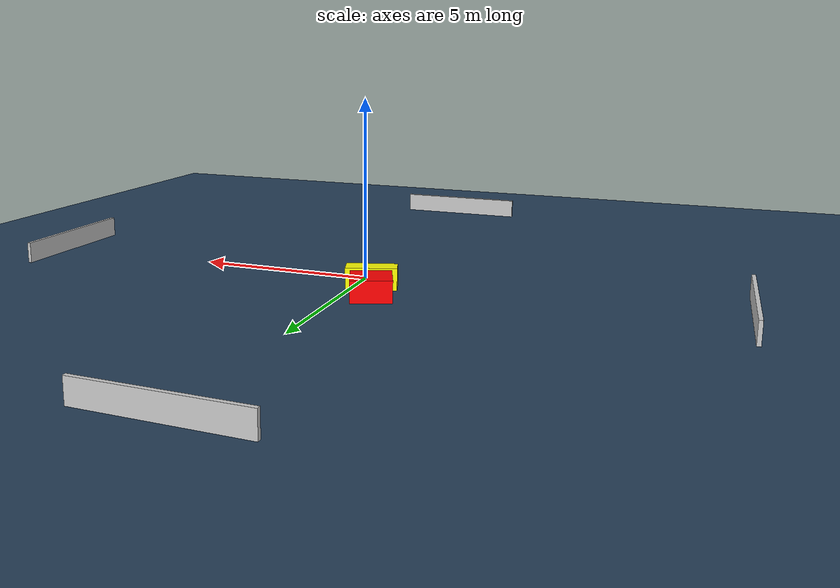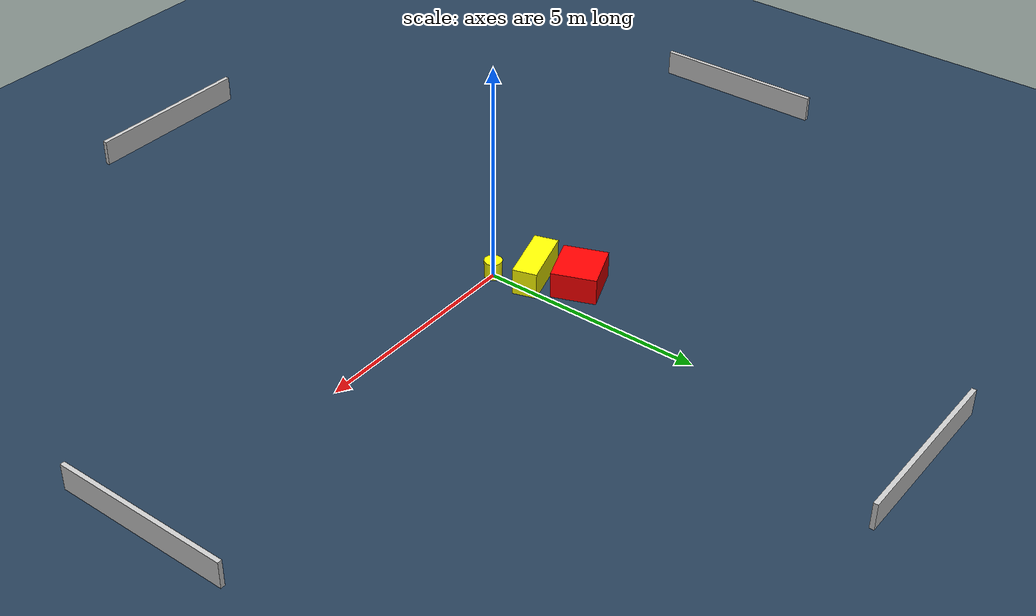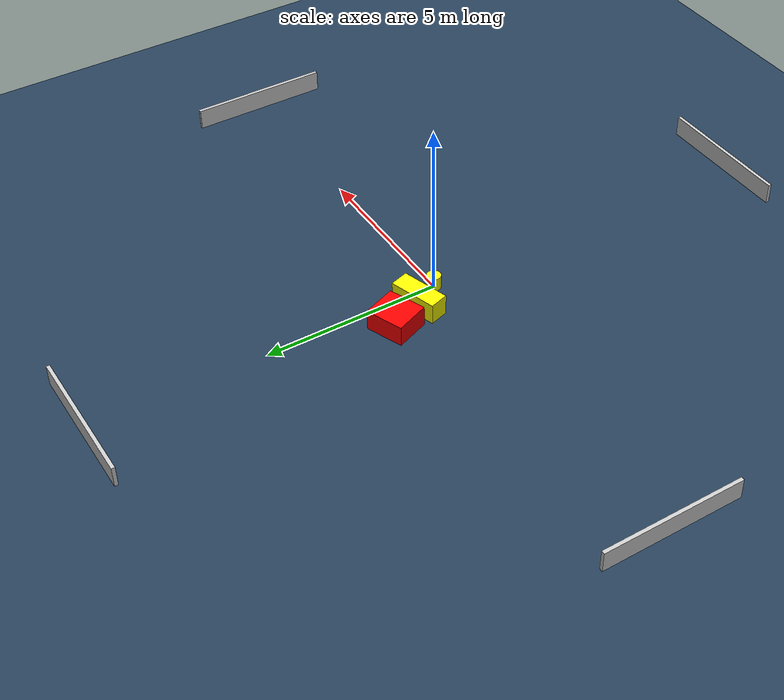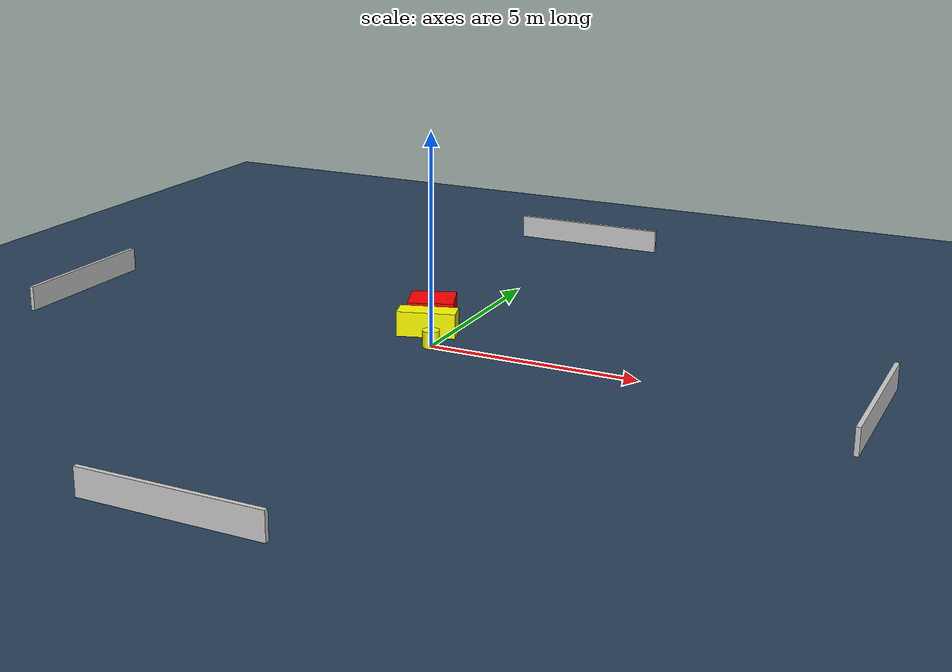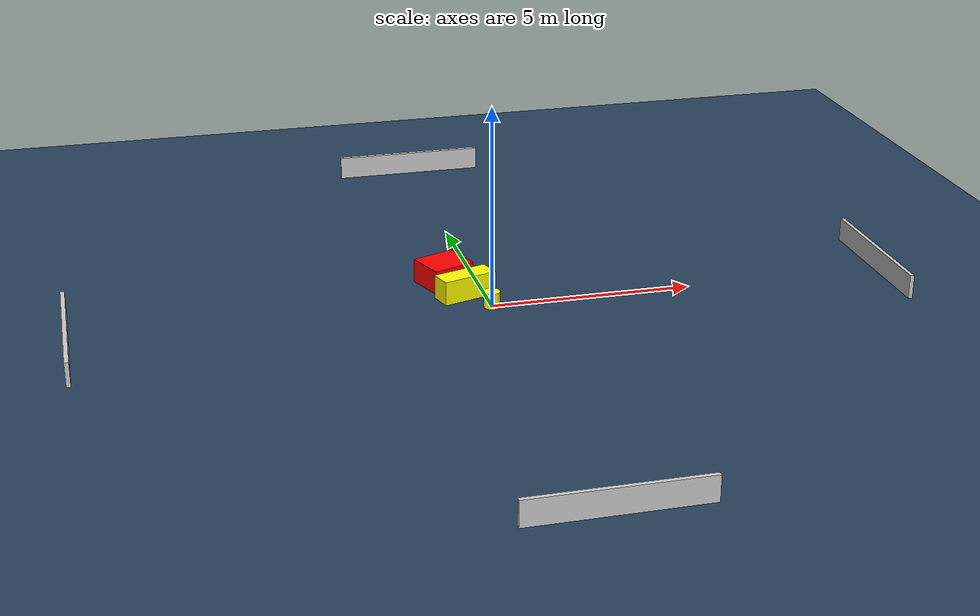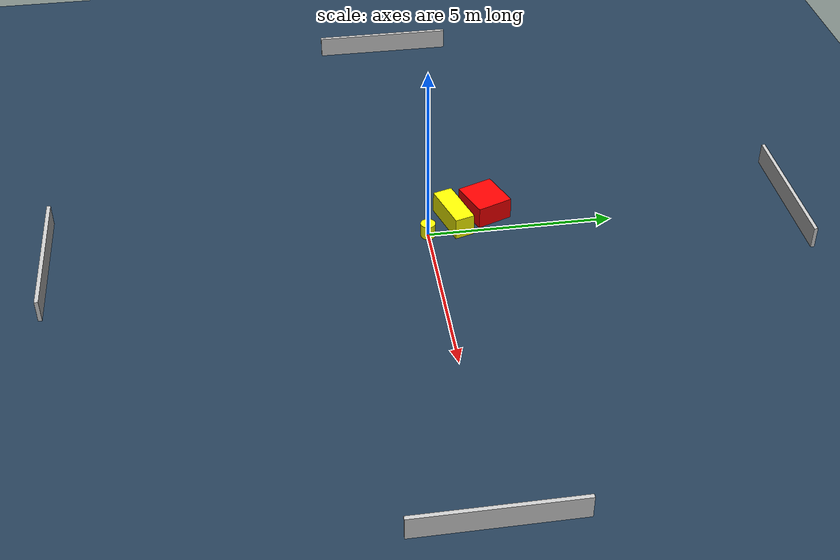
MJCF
<?xml version="1.0" ?>
<mujoco model="generated_environment">
  <option timestep="0.01" integrator="RK4" cone="elliptic"/>
  <default>
    <geom density="1"/>
  </default>
  <asset>
    <texture builtin="gradient" height="3072" name="skybox" rgb1="0.3 0.5 0.7" rgb2="0 0 0" type="skybox" width="512"/>
    <texture builtin="checker" height="300" name="groundplane" rgb1="0.2 0.3 0.4" rgb2="0.1 0.2 0.3" type="2d" width="300"/>
    <material name="groundplane" reflectance="0.2" texrepeat="5 5" texture="groundplane"/>
  </asset>
  <worldbody>
    <light dir="0 0 -1" directional="true" pos="0 0 1.5"/>
    <geom condim="3" friction="0.5 0.005 0.001" material="groundplane" name="floor" pos="0 0 0" size="0 0 0.05" type="plane"/>
    <body name="walls">
      <geom name="wall_1" condim="4" pos="-10.0 0.0 0.3" rgba="0.800000011920929 0.800000011920929 0.800000011920929 1.0" size="0.05 2.0 0.3" type="box"/>
      <geom name="wall_2" condim="4" pos="10.0 0.0 0.3" rgba="0.800000011920929 0.800000011920929 0.800000011920929 1.0" size="0.05 2.0 0.3" type="box"/>
      <geom name="wall_3" condim="4" pos="0.0 -10.0 0.3" rgba="0.800000011920929 0.800000011920929 0.800000011920929 1.0" size="2.0 0.05 0.3" type="box"/>
      <geom name="wall_4" condim="4" pos="0.0 10.0 0.3" rgba="0.800000011920929 0.800000011920929 0.800000011920929 1.0" size="2.0 0.05 0.3" type="box"/>
    </body>
    <body name="robot">
      <joint name="joint_x" type="slide" pos="0 0 0" axis="1 0 0"/>
      <joint name="joint_y" type="slide" pos="0 0 0" axis="0 1 0"/>
      <geom name="robot" type="cylinder" pos="0.0 0.0 0.2" size="0.2 0.2 0.0" mass="5.0" friction="1.0 0.005 0.0001" condim="4" rgba="1.0 1.0 0.0 1.0"/>
    </body>
    <body name="obstacle_1_movable">
      <geom name="obstacle_1_movable" condim="4" pos="-0.478451351256288 0.7646093971399708 0.3" euler="0 0 286.9079078595485" friction="0.0 0.005 0.001" rgba="1.0 1.0 0.0 1.0" size="0.2709512051786187 0.6954787156608367 0.3" type="box" mass="0.1"/>
      <joint type="free"/>
    </body>
    <body name="obstacle_2_static">
      <geom name="obstacle_2_static" condim="4" pos="-0.8121957411461582 1.6784436211142961 0.3" euler="0 0 201.27298851440705" friction="0.0 0.005 0.001" rgba="1.0 0.0 0.0 1.0" size="0.5487469746358402 0.49664844771615935 0.3" type="box"/>
    </body>
  </worldbody>
  <actuator>
    <motor name="actuator_x" joint="joint_x" gear="1" ctrlrange="-1 1"/>
    <motor name="actuator_y" joint="joint_y" gear="1" ctrlrange="-1 1"/>
  </actuator>
</mujoco>
